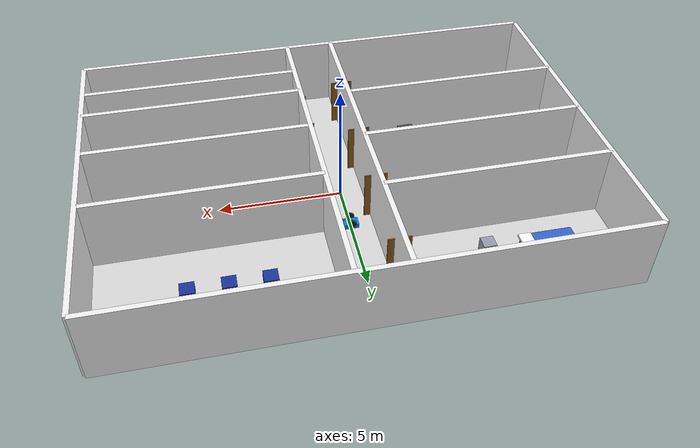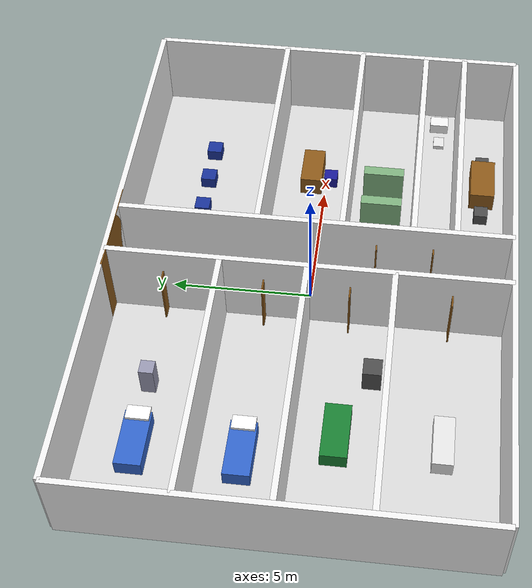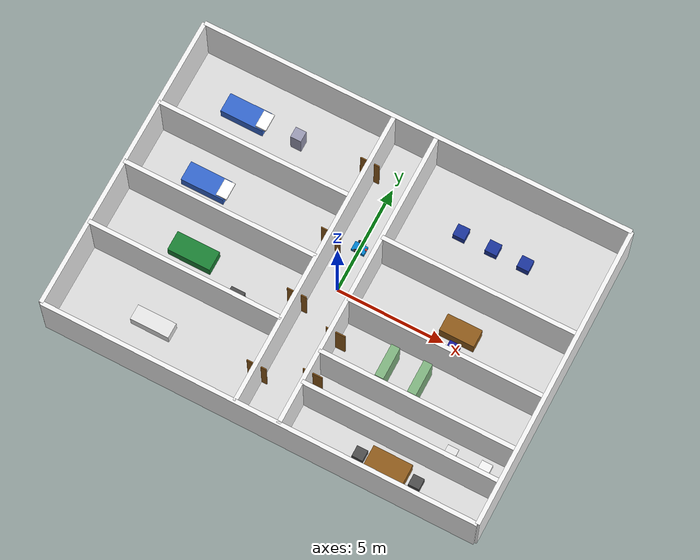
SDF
<?xml version="1.0" ?>
<sdf version="1.8">
  <world name="smart_hospital_world">

    <!-- ===================== PHYSICS & ENVIRONMENT ===================== -->
    <physics name="1ms" type="ode">
      <max_step_size>0.001</max_step_size>
      <real_time_factor>1.0</real_time_factor>
    </physics>

    <plugin filename="gz-sim-physics-system"       name="gz::sim::systems::Physics"/>
    <plugin filename="gz-sim-scene-broadcaster-system" name="gz::sim::systems::SceneBroadcaster"/>
    <plugin filename="gz-sim-user-commands-system"  name="gz::sim::systems::UserCommands"/>

    <gravity>0 0 -9.8</gravity>

    <!-- Ambient light -->
    <light type="directional" name="sun">
      <cast_shadows>true</cast_shadows>
      <pose>0 0 10 0 0 0</pose>
      <diffuse>0.9 0.9 0.9 1</diffuse>
      <specular>0.2 0.2 0.2 1</specular>
      <direction>-0.5 0.1 -0.9</direction>
    </light>

    <!-- ===================== MODEL: smart_hospital ===================== -->
    <model name="smart_hospital">
      <static>true</static>
      <pose>0 0 0 0 0 0</pose>

      <!-- ============================================================
           FLOOR  (20 m wide × 14 m deep)
      ============================================================ -->
      <link name="floor">
        <pose>0 0 0 0 0 0</pose>
        <collision name="floor_col">
          <geometry><box><size>20 14 0.1</size></box></geometry>
        </collision>
        <visual name="floor_vis">
          <geometry><box><size>20 14 0.1</size></box></geometry>
          <material>
            <ambient>0.85 0.85 0.85 1</ambient>
            <diffuse>0.85 0.85 0.85 1</diffuse>
          </material>
        </visual>
      </link>

      <!-- ============================================================
           OUTER WALLS  (h = 3 m, t = 0.2 m)
      ============================================================ -->
      <!-- top_wall (north, y = +7) -->
      <link name="top_wall">
        <pose>0 7 1.5 0 0 0</pose>
        <collision name="c"><geometry><box><size>20 0.2 3</size></box></geometry></collision>
        <visual name="v">
          <geometry><box><size>20 0.2 3</size></box></geometry>
          <material><ambient>0.95 0.95 0.95 1</ambient><diffuse>0.95 0.95 0.95 1</diffuse></material>
        </visual>
      </link>

      <!-- bottom_wall (south, y = -7) -->
      <link name="bottom_wall">
        <pose>0 -7 1.5 0 0 0</pose>
        <collision name="c"><geometry><box><size>20 0.2 3</size></box></geometry></collision>
        <visual name="v">
          <geometry><box><size>20 0.2 3</size></box></geometry>
          <material><ambient>0.95 0.95 0.95 1</ambient><diffuse>0.95 0.95 0.95 1</diffuse></material>
        </visual>
      </link>

      <!-- left_wall (west, x = -10) -->
      <link name="left_wall">
        <pose>-10 0 1.5 0 0 0</pose>
        <collision name="c"><geometry><box><size>0.2 14 3</size></box></geometry></collision>
        <visual name="v">
          <geometry><box><size>0.2 14 3</size></box></geometry>
          <material><ambient>0.95 0.95 0.95 1</ambient><diffuse>0.95 0.95 0.95 1</diffuse></material>
        </visual>
      </link>

      <!-- right_wall (east, x = +10) -->
      <link name="right_wall">
        <pose>10 0 1.5 0 0 0</pose>
        <collision name="c"><geometry><box><size>0.2 14 3</size></box></geometry></collision>
        <visual name="v">
          <geometry><box><size>0.2 14 3</size></box></geometry>
          <material><ambient>0.95 0.95 0.95 1</ambient><diffuse>0.95 0.95 0.95 1</diffuse></material>
        </visual>
      </link>

      <!-- ============================================================
           CENTRAL CORRIDOR WALLS  (x = -1 and x = +1, full depth)
      ============================================================ -->
      <!-- corridor_wall_left -->
      <link name="corridor_wall_left">
        <pose>-1 0 1.5 0 0 0</pose>
        <collision name="c"><geometry><box><size>0.2 14 3</size></box></geometry></collision>
        <visual name="v">
          <geometry><box><size>0.2 14 3</size></box></geometry>
          <material><ambient>0.95 0.95 0.95 1</ambient><diffuse>0.95 0.95 0.95 1</diffuse></material>
        </visual>
      </link>

      <!-- corridor_wall_right -->
      <link name="corridor_wall_right">
        <pose>1 0 1.5 0 0 0</pose>
        <collision name="c"><geometry><box><size>0.2 14 3</size></box></geometry></collision>
        <visual name="v">
          <geometry><box><size>0.2 14 3</size></box></geometry>
          <material><ambient>0.95 0.95 0.95 1</ambient><diffuse>0.95 0.95 0.95 1</diffuse></material>
        </visual>
      </link>

      <link name="divider_1">
        <pose>-5.5 3 1.5 0 0 0</pose>
        <collision name="c"><geometry><box><size>9 0.2 3</size></box></geometry></collision>
        <visual name="v">
          <geometry><box><size>9 0.2 3</size></box></geometry>
          <material><ambient>0.95 0.95 0.95 1</ambient><diffuse>0.95 0.95 0.95 1</diffuse></material>
        </visual>
      </link>

      <link name="divider_2">
        <pose>-5.5 0 1.5 0 0 0</pose>
        <collision name="c"><geometry><box><size>9 0.2 3</size></box></geometry></collision>
        <visual name="v">
          <geometry><box><size>9 0.2 3</size></box></geometry>
          <material><ambient>0.95 0.95 0.95 1</ambient><diffuse>0.95 0.95 0.95 1</diffuse></material>
        </visual>
      </link>

      <link name="divider_3">
        <pose>-5.5 -3 1.5 0 0 0</pose>
        <collision name="c"><geometry><box><size>9 0.2 3</size></box></geometry></collision>
        <visual name="v">
          <geometry><box><size>9 0.2 3</size></box></geometry>
          <material><ambient>0.95 0.95 0.95 1</ambient><diffuse>0.95 0.95 0.95 1</diffuse></material>
        </visual>
      </link>

      <link name="divider_r1">
        <pose>5.5 2 1.5 0 0 0</pose>
        <collision name="c"><geometry><box><size>9 0.2 3</size></box></geometry></collision>
        <visual name="v">
          <geometry><box><size>9 0.2 3</size></box></geometry>
          <material><ambient>0.95 0.95 0.95 1</ambient><diffuse>0.95 0.95 0.95 1</diffuse></material>
        </visual>
      </link>

      <link name="divider_r2">
        <pose>5.5 -1 1.5 0 0 0</pose>
        <collision name="c"><geometry><box><size>9 0.2 3</size></box></geometry></collision>
        <visual name="v">
          <geometry><box><size>9 0.2 3</size></box></geometry>
          <material><ambient>0.95 0.95 0.95 1</ambient><diffuse>0.95 0.95 0.95 1</diffuse></material>
        </visual>
      </link>

      <link name="divider_r3">
        <pose>5.5 -3.5 1.5 0 0 0</pose>
        <collision name="c"><geometry><box><size>9 0.2 3</size></box></geometry></collision>
        <visual name="v">
          <geometry><box><size>9 0.2 3</size></box></geometry>
          <material><ambient>0.95 0.95 0.95 1</ambient><diffuse>0.95 0.95 0.95 1</diffuse></material>
        </visual>
      </link>

      <link name="divider_r4">
        <pose>5.5 -5 1.5 0 0 0</pose>
        <collision name="c"><geometry><box><size>9 0.2 3</size></box></geometry></collision>
        <visual name="v">
          <geometry><box><size>9 0.2 3</size></box></geometry>
          <material><ambient>0.95 0.95 0.95 1</ambient><diffuse>0.95 0.95 0.95 1</diffuse></material>
        </visual>
      </link>

      <!-- door_icu1 -->
      <link name="door_icu1">
        <pose>-1.1 5 1.05 0 0 1.5708</pose>
        <visual name="v">
          <geometry><box><size>0.05 0.9 2.1</size></box></geometry>
          <material><ambient>0.55 0.35 0.1 1</ambient><diffuse>0.55 0.35 0.1 1</diffuse></material>
        </visual>
      </link>

      <!-- door_icu2 -->
      <link name="door_icu2">
        <pose>-1.1 1.5 1.05 0 0 1.5708</pose>
        <visual name="v">
          <geometry><box><size>0.05 0.9 2.1</size></box></geometry>
          <material><ambient>0.55 0.35 0.1 1</ambient><diffuse>0.55 0.35 0.1 1</diffuse></material>
        </visual>
      </link>

      <!-- door_patient_room -->
      <link name="door_patient_room">
        <pose>-1.1 -1.5 1.05 0 0 1.5708</pose>
        <visual name="v">
          <geometry><box><size>0.05 0.9 2.1</size></box></geometry>
          <material><ambient>0.55 0.35 0.1 1</ambient><diffuse>0.55 0.35 0.1 1</diffuse></material>
        </visual>
      </link>

      <!-- door_medical_room -->
      <link name="door_medical_room">
        <pose>-1.1 -5 1.05 0 0 1.5708</pose>
        <visual name="v">
          <geometry><box><size>0.05 0.9 2.1</size></box></geometry>
          <material><ambient>0.55 0.35 0.1 1</ambient><diffuse>0.55 0.35 0.1 1</diffuse></material>
        </visual>
      </link>

      <!-- door_pharmacy -->
      <link name="door_pharmacy">
        <pose>1.1 -2.25 1.05 0 0 1.5708</pose>
        <visual name="v">
          <geometry><box><size>0.05 0.9 2.1</size></box></geometry>
          <material><ambient>0.55 0.35 0.1 1</ambient><diffuse>0.55 0.35 0.1 1</diffuse></material>
        </visual>
      </link>

      <!-- door_bathroom -->
      <link name="door_bathroom">
        <pose>1.1 -4.25 1.05 0 0 1.5708</pose>
        <visual name="v">
          <geometry><box><size>0.05 0.9 2.1</size></box></geometry>
          <material><ambient>0.55 0.35 0.1 1</ambient><diffuse>0.55 0.35 0.1 1</diffuse></material>
        </visual>
      </link>

      <link name="icu_bed_1">
        <pose>-7 5 0.5 0 0 0</pose>
        <collision name="c"><geometry><box><size>2.0 0.9 0.6</size></box></geometry></collision>
        <visual name="v">
          <geometry><box><size>2.0 0.9 0.6</size></box></geometry>
          <material><ambient>0.2 0.4 0.8 1</ambient><diffuse>0.2 0.4 0.8 1</diffuse></material>
        </visual>
      </link>
      <!-- icu bed 1 pillow -->
      <link name="icu_bed_1_pillow">
        <pose>-6.1 5 0.85 0 0 0</pose>
        <visual name="v">
          <geometry><box><size>0.5 0.8 0.1</size></box></geometry>
          <material><ambient>1 1 1 1</ambient><diffuse>1 1 1 1</diffuse></material>
        </visual>
      </link>

      <link name="icu_bed_2">
        <pose>-7 1.5 0.5 0 0 0</pose>
        <collision name="c"><geometry><box><size>2.0 0.9 0.6</size></box></geometry></collision>
        <visual name="v">
          <geometry><box><size>2.0 0.9 0.6</size></box></geometry>
          <material><ambient>0.2 0.4 0.8 1</ambient><diffuse>0.2 0.4 0.8 1</diffuse></material>
        </visual>
      </link>
      <link name="icu_bed_2_pillow">
        <pose>-6.1 1.5 0.85 0 0 0</pose>
        <visual name="v">
          <geometry><box><size>0.5 0.8 0.1</size></box></geometry>
          <material><ambient>1 1 1 1</ambient><diffuse>1 1 1 1</diffuse></material>
        </visual>
      </link>

      <!-- ============================================================
           PATIENT BED  (Patient Room, x=-5.5, y=-1.5)
      ============================================================ -->
      <link name="patient_bed_1">
        <pose>-6 -1.5 0.5 0 0 0</pose>
        <collision name="c"><geometry><box><size>2.0 0.9 0.6</size></box></geometry></collision>
        <visual name="v">
          <geometry><box><size>2.0 0.9 0.6</size></box></geometry>
          <material><ambient>0.1 0.5 0.2 1</ambient><diffuse>0.1 0.5 0.2 1</diffuse></material>
        </visual>
      </link>

      <!-- ============================================================
           WHEELCHAIR  (Patient Room corner)
      ============================================================ -->
      <link name="wheelchair_1">
        <pose>-3.5 -2.5 0.5 0 0 0</pose>
        <collision name="c"><geometry><box><size>0.65 0.65 0.9</size></box></geometry></collision>
        <visual name="v">
          <geometry><box><size>0.65 0.65 0.9</size></box></geometry>
          <material><ambient>0.3 0.3 0.3 1</ambient><diffuse>0.3 0.3 0.3 1</diffuse></material>
        </visual>
      </link>

      <!-- ============================================================
           MEDICAL ROOM BED / EXAM TABLE  (x=-5.5, y=-5)
      ============================================================ -->
      <link name="exam_table">
        <pose>-6 -5 0.5 0 0 0</pose>
        <collision name="c"><geometry><box><size>1.8 0.7 0.6</size></box></geometry></collision>
        <visual name="v">
          <geometry><box><size>1.8 0.7 0.6</size></box></geometry>
          <material><ambient>0.9 0.9 0.9 1</ambient><diffuse>0.9 0.9 0.9 1</diffuse></material>
        </visual>
      </link>

      <!-- ============================================================
           NURSE STATION TABLE & CHAIR  (right wing, y=0.5)
      ============================================================ -->
      <link name="nurse_station_table">
        <pose>5.5 0.5 0.75 0 0 0</pose>
        <collision name="c"><geometry><box><size>1.6 0.8 0.75</size></box></geometry></collision>
        <visual name="v">
          <geometry><box><size>1.6 0.8 0.75</size></box></geometry>
          <material><ambient>0.55 0.35 0.1 1</ambient><diffuse>0.55 0.35 0.1 1</diffuse></material>
        </visual>
      </link>

      <link name="nurse_station_chair">
        <pose>5.5 -0.2 0.45 0 0 0</pose>
        <collision name="c"><geometry><box><size>0.5 0.5 0.45</size></box></geometry></collision>
        <visual name="v">
          <geometry><box><size>0.5 0.5 0.45</size></box></geometry>
          <material><ambient>0.1 0.1 0.6 1</ambient><diffuse>0.1 0.1 0.6 1</diffuse></material>
        </visual>
      </link>

      <link name="chair_1">
        <pose>3.5 4.5 0.45 0 0 0</pose>
        <collision name="c"><geometry><box><size>0.55 0.55 0.45</size></box></geometry></collision>
        <visual name="v">
          <geometry><box><size>0.55 0.55 0.45</size></box></geometry>
          <material><ambient>0.1 0.2 0.6 1</ambient><diffuse>0.1 0.2 0.6 1</diffuse></material>
        </visual>
      </link>

      <link name="chair_2">
        <pose>5.0 4.5 0.45 0 0 0</pose>
        <collision name="c"><geometry><box><size>0.55 0.55 0.45</size></box></geometry></collision>
        <visual name="v">
          <geometry><box><size>0.55 0.55 0.45</size></box></geometry>
          <material><ambient>0.1 0.2 0.6 1</ambient><diffuse>0.1 0.2 0.6 1</diffuse></material>
        </visual>
      </link>

      <link name="chair_3">
        <pose>6.5 4.5 0.45 0 0 0</pose>
        <collision name="c"><geometry><box><size>0.55 0.55 0.45</size></box></geometry></collision>
        <visual name="v">
          <geometry><box><size>0.55 0.55 0.45</size></box></geometry>
          <material><ambient>0.1 0.2 0.6 1</ambient><diffuse>0.1 0.2 0.6 1</diffuse></material>
        </visual>
      </link>

      <!-- ============================================================
           STAFF ROOM TABLE & CHAIRS  (right wing bottom, y=-6)
      ============================================================ -->
      <link name="table_1">
        <pose>5.5 -6 0.75 0 0 0</pose>
        <collision name="c"><geometry><box><size>1.8 0.9 0.75</size></box></geometry></collision>
        <visual name="v">
          <geometry><box><size>1.8 0.9 0.75</size></box></geometry>
          <material><ambient>0.55 0.35 0.1 1</ambient><diffuse>0.55 0.35 0.1 1</diffuse></material>
        </visual>
      </link>

      <link name="staff_chair_1">
        <pose>4.2 -6 0.45 0 0 0</pose>
        <visual name="v">
          <geometry><box><size>0.5 0.5 0.45</size></box></geometry>
          <material><ambient>0.3 0.3 0.3 1</ambient><diffuse>0.3 0.3 0.3 1</diffuse></material>
        </visual>
      </link>

      <link name="staff_chair_2">
        <pose>6.8 -6 0.45 0 0 0</pose>
        <visual name="v">
          <geometry><box><size>0.5 0.5 0.45</size></box></geometry>
          <material><ambient>0.3 0.3 0.3 1</ambient><diffuse>0.3 0.3 0.3 1</diffuse></material>
        </visual>
      </link>

      <!-- ============================================================
           PHARMACY / STORAGE SHELVES  (right wing mid, y=-2.25)
      ============================================================ -->
      <link name="pharmacy_shelf_1">
        <pose>3.5 -2.25 0.8 0 0 0</pose>
        <collision name="c"><geometry><box><size>0.4 1.5 1.6</size></box></geometry></collision>
        <visual name="v">
          <geometry><box><size>0.4 1.5 1.6</size></box></geometry>
          <material><ambient>0.5 0.7 0.5 1</ambient><diffuse>0.5 0.7 0.5 1</diffuse></material>
        </visual>
      </link>

      <link name="pharmacy_shelf_2">
        <pose>5.0 -2.25 0.8 0 0 0</pose>
        <collision name="c"><geometry><box><size>0.4 1.5 1.6</size></box></geometry></collision>
        <visual name="v">
          <geometry><box><size>0.4 1.5 1.6</size></box></geometry>
          <material><ambient>0.5 0.7 0.5 1</ambient><diffuse>0.5 0.7 0.5 1</diffuse></material>
        </visual>
      </link>

      <!-- ============================================================
           BP CART / MEDICAL CART  (ICU 1 room)
      ============================================================ -->
      <link name="bp_cart_1">
        <pose>-4.5 5 0.6 0 0 0</pose>
        <collision name="c"><geometry><box><size>0.5 0.5 1.2</size></box></geometry></collision>
        <visual name="v">
          <geometry><box><size>0.5 0.5 1.2</size></box></geometry>
          <material><ambient>0.6 0.6 0.7 1</ambient><diffuse>0.6 0.6 0.7 1</diffuse></material>
        </visual>
      </link>

      <!-- ============================================================
           BATHROOM TOILET & SINK  (right wing, y=-4.25)
      ============================================================ -->
      <link name="toilet_1">
        <pose>9 -4.25 0.4 0 0 0</pose>
        <collision name="c"><geometry><box><size>0.5 0.7 0.4</size></box></geometry></collision>
        <visual name="v">
          <geometry><box><size>0.5 0.7 0.4</size></box></geometry>
          <material><ambient>0.95 0.95 0.95 1</ambient><diffuse>0.95 0.95 0.95 1</diffuse></material>
        </visual>
      </link>

      <link name="sink_1">
        <pose>7.5 -4.25 0.85 0 0 0</pose>
        <collision name="c"><geometry><box><size>0.5 0.4 0.15</size></box></geometry></collision>
        <visual name="v">
          <geometry><box><size>0.5 0.4 0.15</size></box></geometry>
          <material><ambient>0.9 0.9 0.9 1</ambient><diffuse>0.9 0.9 0.9 1</diffuse></material>
        </visual>
      </link>

      <!-- ============================================================
           AMBULANCE BAY DOOR (north wall centre opening marker)
      ============================================================ -->
      <link name="ambulance_bay_marker">
        <pose>0 6.95 1.5 0 0 0</pose>
        <visual name="v">
          <geometry><box><size>3.5 0.1 3.0</size></box></geometry>
          <material><ambient>0.55 0.35 0.1 1</ambient><diffuse>0.55 0.35 0.1 1</diffuse></material>
        </visual>
      </link>

      <!-- ============================================================
           CEILING LIGHTS  (point lights, one per room)
      ============================================================ -->
      <light type="point" name="light_icu1">
        <pose>-5.5 5 2.8 0 0 0</pose>
        <diffuse>1 1 1 1</diffuse><specular>0.1 0.1 0.1 1</specular>
        <attenuation><range>6</range><constant>0.5</constant><linear>0.01</linear><quadratic>0.001</quadratic></attenuation>
        <cast_shadows>false</cast_shadows>
      </light>

      <light type="point" name="light_icu2">
        <pose>-5.5 1.5 2.8 0 0 0</pose>
        <diffuse>1 1 1 1</diffuse><specular>0.1 0.1 0.1 1</specular>
        <attenuation><range>6</range><constant>0.5</constant><linear>0.01</linear><quadratic>0.001</quadratic></attenuation>
        <cast_shadows>false</cast_shadows>
      </light>

      <light type="point" name="light_patient">
        <pose>-5.5 -1.5 2.8 0 0 0</pose>
        <diffuse>1 1 1 1</diffuse><specular>0.1 0.1 0.1 1</specular>
        <attenuation><range>6</range><constant>0.5</constant><linear>0.01</linear><quadratic>0.001</quadratic></attenuation>
        <cast_shadows>false</cast_shadows>
      </light>

      <light type="point" name="light_medical">
        <pose>-5.5 -5 2.8 0 0 0</pose>
        <diffuse>1 1 1 1</diffuse><specular>0.1 0.1 0.1 1</specular>
        <attenuation><range>6</range><constant>0.5</constant><linear>0.01</linear><quadratic>0.001</quadratic></attenuation>
        <cast_shadows>false</cast_shadows>
      </light>

      <light type="point" name="light_waiting">
        <pose>5.5 4.5 2.8 0 0 0</pose>
        <diffuse>1 1 1 1</diffuse><specular>0.1 0.1 0.1 1</specular>
        <attenuation><range>6</range><constant>0.5</constant><linear>0.01</linear><quadratic>0.001</quadratic></attenuation>
        <cast_shadows>false</cast_shadows>
      </light>

      <light type="point" name="light_nurse">
        <pose>5.5 0.5 2.8 0 0 0</pose>
        <diffuse>1 1 1 1</diffuse><specular>0.1 0.1 0.1 1</specular>
        <attenuation><range>6</range><constant>0.5</constant><linear>0.01</linear><quadratic>0.001</quadratic></attenuation>
        <cast_shadows>false</cast_shadows>
      </light>

      <light type="point" name="light_pharmacy">
        <pose>5.5 -2.25 2.8 0 0 0</pose>
        <diffuse>1 1 1 1</diffuse><specular>0.1 0.1 0.1 1</specular>
        <attenuation><range>6</range><constant>0.5</constant><linear>0.01</linear><quadratic>0.001</quadratic></attenuation>
        <cast_shadows>false</cast_shadows>
      </light>

      <light type="point" name="light_corridor">
        <pose>0 0 2.8 0 0 0</pose>
        <diffuse>1 1 1 1</diffuse><specular>0.1 0.1 0.1 1</specular>
        <attenuation><range>14</range><constant>0.5</constant><linear>0.01</linear><quadratic>0.001</quadratic></attenuation>
        <cast_shadows>false</cast_shadows>
      </light>

    </model>

    <!-- ============================================================
         ROBOT (differential drive, starts in corridor)
    ============================================================ -->
    <model name="hospital_robot">
      <pose>0 2 0.18 0 0 0</pose>

      <link name="chassis">
        <inertial>
          <mass>10.0</mass>
          <inertia><ixx>0.3</ixx><ixy>0</ixy><ixz>0</ixz><iyy>0.4</iyy><iyz>0</iyz><izz>0.3</izz></inertia>
        </inertial>
        <collision name="chassis_col">
          <geometry><box><size>0.6 0.4 0.2</size></box></geometry>
        </collision>
        <visual name="chassis_vis">
          <geometry><box><size>0.6 0.4 0.2</size></box></geometry>
          <material><ambient>0.0 0.5 0.8 1</ambient><diffuse>0.0 0.5 0.8 1</diffuse></material>
        </visual>
      </link>

      <!-- Left wheel -->
      <link name="left_wheel">
        <pose>0 0.22 0.18 1.5708 0 0</pose>
        <inertial><mass>1.0</mass><inertia><ixx>0.01</ixx><ixy>0</ixy><ixz>0</ixz><iyy>0.01</iyy><iyz>0</iyz><izz>0.01</izz></inertia></inertial>
        <collision name="c"><geometry><cylinder><radius>0.18</radius><length>0.05</length></cylinder></geometry></collision>
        <visual name="v">
          <geometry><cylinder><radius>0.18</radius><length>0.05</length></cylinder></geometry>
          <material><ambient>0.1 0.1 0.1 1</ambient><diffuse>0.1 0.1 0.1 1</diffuse></material>
        </visual>
      </link>

      <!-- Right wheel -->
      <link name="right_wheel">
        <pose>0 -0.22 0.18 1.5708 0 0</pose>
        <inertial><mass>1.0</mass><inertia><ixx>0.01</ixx><ixy>0</ixy><ixz>0</ixz><iyy>0.01</iyy><iyz>0</iyz><izz>0.01</izz></inertia></inertial>
        <collision name="c"><geometry><cylinder><radius>0.18</radius><length>0.05</length></cylinder></geometry></collision>
        <visual name="v">
          <geometry><cylinder><radius>0.18</radius><length>0.05</length></cylinder></geometry>
          <material><ambient>0.1 0.1 0.1 1</ambient><diffuse>0.1 0.1 0.1 1</diffuse></material>
        </visual>
      </link>

      <!-- Caster front -->
      <link name="caster_front">
        <pose>0.25 0 0.05 0 0 0</pose>
        <inertial><mass>0.5</mass><inertia><ixx>0.001</ixx><ixy>0</ixy><ixz>0</ixz><iyy>0.001</iyy><iyz>0</iyz><izz>0.001</izz></inertia></inertial>
        <collision name="c"><geometry><sphere><radius>0.05</radius></sphere></geometry></collision>
        <visual name="v"><geometry><sphere><radius>0.05</radius></sphere></geometry><material><ambient>0.4 0.4 0.4 1</ambient></material></visual>
      </link>

      <!-- Caster rear -->
      <link name="caster_rear">
        <pose>-0.25 0 0.05 0 0 0</pose>
        <inertial><mass>0.5</mass><inertia><ixx>0.001</ixx><ixy>0</ixy><ixz>0</ixz><iyy>0.001</iyy><iyz>0</iyz><izz>0.001</izz></inertia></inertial>
        <collision name="c"><geometry><sphere><radius>0.05</radius></sphere></geometry></collision>
        <visual name="v"><geometry><sphere><radius>0.05</radius></sphere></geometry><material><ambient>0.4 0.4 0.4 1</ambient></material></visual>
      </link>

      <!-- Joints -->
      <joint name="left_wheel_joint" type="revolute">
        <parent>chassis</parent><child>left_wheel</child>
        <axis><xyz>0 0 1</xyz><limit><lower>-1e16</lower><upper>1e16</upper></limit></axis>
      </joint>

      <joint name="right_wheel_joint" type="revolute">
        <parent>chassis</parent><child>right_wheel</child>
        <axis><xyz>0 0 1</xyz><limit><lower>-1e16</lower><upper>1e16</upper></limit></axis>
      </joint>

      <joint name="caster_front_joint" type="ball">
        <parent>chassis</parent><child>caster_front</child>
      </joint>

      <joint name="caster_rear_joint" type="ball">
        <parent>chassis</parent><child>caster_rear</child>
      </joint>

      <!-- Differential drive plugin -->
      <plugin filename="gz-sim-diff-drive-system" name="gz::sim::systems::DiffDrive">
        <left_joint>left_wheel_joint</left_joint>
        <right_joint>right_wheel_joint</right_joint>
        <wheel_separation>0.44</wheel_separation>
        <wheel_radius>0.18</wheel_radius>
        <odom_publish_frequency>10</odom_publish_frequency>
        <topic>/cmd_vel</topic>
        <odom_topic>/odom</odom_topic>
        <frame_id>odom</frame_id>
        <child_frame_id>base_footprint</child_frame_id>
      </plugin>

      <!-- 2-D Lidar for navigation -->
      <link name="lidar_link">
        <pose>0.3 0 0.25 0 0 0</pose>
        <visual name="v">
          <geometry><cylinder><radius>0.05</radius><length>0.05</length></cylinder></geometry>
          <material><ambient>0.9 0.2 0.2 1</ambient><diffuse>0.9 0.2 0.2 1</diffuse></material>
        </visual>
        <sensor name="lidar" type="gpu_lidar">
          <update_rate>10</update_rate>
          <lidar>
            <scan>
              <horizontal>
                <samples>640</samples><resolution>1</resolution>
                <min_angle>-3.14159</min_angle><max_angle>3.14159</max_angle>
              </horizontal>
            </scan>
            <range><min>0.08</min><max>10.0</max><resolution>0.01</resolution></range>
          </lidar>
          <topic>/scan</topic>
          <gz_frame_id>lidar_link</gz_frame_id>
        </sensor>
      </link>

      <joint name="lidar_joint" type="fixed">
        <parent>chassis</parent><child>lidar_link</child>
      </joint>

    </model>

  </world>
</sdf>
